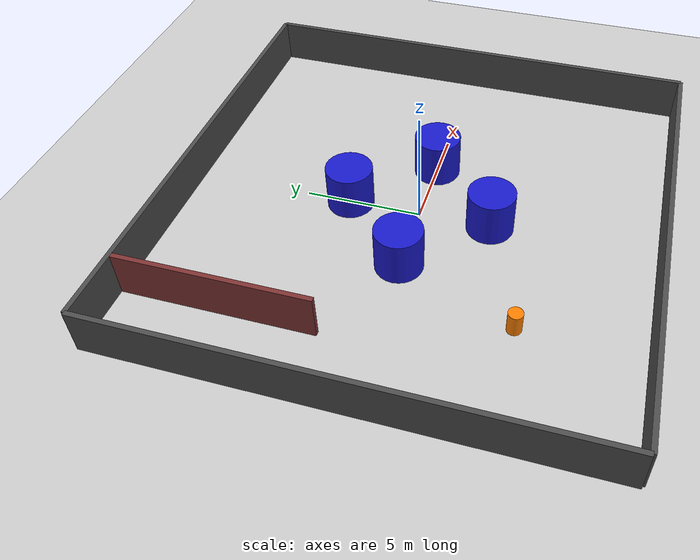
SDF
<sdf version="1.9">
 <world name="custom_room">
  <physics name="1ms" type="ignored">
   <max_step_size>0.001</max_step_size>
   <real_time_factor>1</real_time_factor>
   <real_time_update_rate>1000</real_time_update_rate>
  </physics>
  <plugin name="ignition::gazebo::systems::Physics" filename="libignition-gazebo-physics-system.so"/>
  <plugin name="ignition::gazebo::systems::UserCommands" filename="libignition-gazebo-user-commands-system.so"/>
  <plugin name="ignition::gazebo::systems::Sensors" filename="libignition-gazebo-sensors-system.so">
   <render_engine>ogre2</render_engine>
  </plugin>
  <plugin name="ignition::gazebo::systems::SceneBroadcaster" filename="libignition-gazebo-scene-broadcaster-system.so"/>
  <gravity>0 0 -9.8</gravity>
  <magnetic_field>6e-06 2.3e-05 -4.2e-05</magnetic_field>
  <atmosphere type="adiabatic"/>
  <scene><ambient>0.4 0.4 0.4 1</ambient><background>0.7 0.7 0.7 1</background><shadows>true</shadows></scene>
  <model name="ground_plane">
   <static>true</static>
   <link name="link">
    <collision name="collision">
     <geometry><plane><normal>0 0 1</normal><size>100 100</size></plane></geometry>
     <surface><friction><ode><mu>100</mu><mu2>50</mu2></ode></friction></surface>
    </collision>
    <visual name="visual">
     <geometry><plane><normal>0 0 1</normal><size>100 100</size></plane></geometry>
     <material>
      <ambient>0.8 0.8 0.8 1</ambient>
      <diffuse>0.8 0.8 0.8 1</diffuse>
      <specular>0.8 0.8 0.8 1</specular>
     </material>
    </visual>
    <inertial>
     <mass>1</mass>
     <inertia><ixx>1</ixx><ixy>0</ixy><ixz>0</ixz><iyy>1</iyy><iyz>0</iyz><izz>1</izz></inertia>
    </inertial>
   </link>
  </model>
  <model name="wall_north">
   <static>true</static>
   <pose>10 0 1 0 -0 0</pose>
   <link name="link">
    <collision name="collision"><geometry><box><size>0.2 20 2</size></box></geometry></collision>
    <visual name="visual">
     <geometry><box><size>0.2 20 2</size></box></geometry>
     <material><ambient>0.3 0.3 0.3 1</ambient></material>
    </visual>
    <inertial>
     <mass>1</mass>
     <inertia><ixx>1</ixx><ixy>0</ixy><ixz>0</ixz><iyy>1</iyy><iyz>0</iyz><izz>1</izz></inertia>
    </inertial>
   </link>
  </model>
  <model name="wall_south">
   <static>true</static>
   <pose>-10 0 1 0 -0 0</pose>
   <link name="link">
    <collision name="collision"><geometry><box><size>0.2 20 2</size></box></geometry></collision>
    <visual name="visual">
     <geometry><box><size>0.2 20 2</size></box></geometry>
     <material><ambient>0.3 0.3 0.3 1</ambient></material>
    </visual>
    <inertial>
     <mass>1</mass>
     <inertia><ixx>1</ixx><ixy>0</ixy><ixz>0</ixz><iyy>1</iyy><iyz>0</iyz><izz>1</izz></inertia>
    </inertial>
   </link>
  </model>
  <model name="wall_east">
   <static>true</static>
   <pose>0 10 1 0 -0 0</pose>
   <link name="link">
    <collision name="collision"><geometry><box><size>20 0.2 2</size></box></geometry></collision>
    <visual name="visual">
     <geometry><box><size>20 0.2 2</size></box></geometry>
     <material><ambient>0.3 0.3 0.3 1</ambient></material>
    </visual>
    <inertial>
     <mass>1</mass>
     <inertia><ixx>1</ixx><ixy>0</ixy><ixz>0</ixz><iyy>1</iyy><iyz>0</iyz><izz>1</izz></inertia>
    </inertial>
   </link>
  </model>
  <model name="wall_west">
   <static>true</static>
   <pose>0 -10 1 0 -0 0</pose>
   <link name="link">
    <collision name="collision"><geometry><box><size>20 0.2 2</size></box></geometry></collision>
    <visual name="visual">
     <geometry><box><size>20 0.2 2</size></box></geometry>
     <material><ambient>0.3 0.3 0.3 1</ambient></material>
    </visual>
    <inertial>
     <mass>1</mass>
     <inertia><ixx>1</ixx><ixy>0</ixy><ixz>0</ixz><iyy>1</iyy><iyz>0</iyz><izz>1</izz></inertia>
    </inertial>
   </link>
  </model>
  <model name="column_center">
   <static>true</static>
   <pose>2.95518 0 1 0 -0 0</pose>
   <link name="link">
    <collision name="collision">
     <geometry><cylinder><radius>1</radius><length>2</length></cylinder></geometry>
    </collision>
    <visual name="visual">
     <geometry><cylinder><radius>1</radius><length>2</length></cylinder></geometry>
     <material><ambient>0.1 0.1 0.8 1</ambient></material>
    </visual>
    <inertial>
     <mass>1</mass>
     <inertia><ixx>1</ixx><ixy>0</ixy><ixz>0</ixz><iyy>1</iyy><iyz>0</iyz><izz>1</izz></inertia>
    </inertial>
   </link>
  </model>
  <model name="wall_internal">
   <static>true</static>
   <pose>-7.13467 5.90741 1 0 -0 0</pose>
   <link name="link">
    <collision name="collision"><geometry><box><size>0.2 8 2</size></box></geometry></collision>
    <visual name="visual">
     <geometry><box><size>0.2 8 2</size></box></geometry>
     <material><ambient>0.5 0.2 0.2 1</ambient></material>
    </visual>
    <inertial>
     <mass>1</mass>
     <inertia><ixx>1</ixx><ixy>0</ixy><ixz>0</ixz><iyy>1</iyy><iyz>0</iyz><izz>1</izz></inertia>
    </inertial>
   </link>
  </model>
  <model name="target_iiwa_placeholder">
   <static>true</static>
   <pose>-5 -5 0.5 0 -0 0</pose>
   <link name="link">
    <collision name="collision">
     <geometry><cylinder><radius>0.29999999999999999</radius><length>1</length></cylinder></geometry>
    </collision>
    <visual name="visual">
     <geometry><cylinder><radius>0.29999999999999999</radius><length>1</length></cylinder></geometry>
     <material><ambient>1 0.5 0 1</ambient></material>
    </visual>
    <inertial>
     <mass>1</mass>
     <inertia><ixx>1</ixx><ixy>0</ixy><ixz>0</ixz><iyy>1</iyy><iyz>0</iyz><izz>1</izz></inertia>
    </inertial>
   </link>
  </model>
  <model name="column_center_1">
   <static>true</static>
   <pose>-3.02201 0.008029 1 0 -0 0</pose>
   <link name="link">
    <collision name="collision">
     <geometry><cylinder><radius>1</radius><length>2</length></cylinder></geometry>
    </collision>
    <visual name="visual">
     <geometry><cylinder><radius>1</radius><length>2</length></cylinder></geometry>
     <material><ambient>0.1 0.1 0.8 1</ambient></material>
    </visual>
   </link>
  </model>
  <model name="ground_plane_1">
   <static>true</static>
   <link name="link">
    <collision name="collision">
     <geometry><plane><normal>0 0 1</normal><size>100 100</size></plane></geometry>
     <surface><friction><ode><mu>100</mu><mu2>50</mu2></ode></friction></surface>
    </collision>
    <visual name="visual">
     <geometry><plane><normal>0 0 1</normal><size>100 100</size></plane></geometry>
     <material>
      <ambient>0.8 0.8 0.8 1</ambient>
      <diffuse>0.8 0.8 0.8 1</diffuse>
      <specular>0.8 0.8 0.8 1</specular>
     </material>
    </visual>
   </link>
   <pose>-4.15767 -0.257121 0 0 -0 0</pose>
  </model>
  <model name="column_center_1_1">
   <static>true</static>
   <pose>0.009985 -3.02755 1 0 -0 0</pose>
   <link name="link">
    <collision name="collision">
     <geometry><cylinder><radius>1</radius><length>2</length></cylinder></geometry>
    </collision>
    <visual name="visual">
     <geometry><cylinder><radius>1</radius><length>2</length></cylinder></geometry>
     <material><ambient>0.1 0.1 0.8 1</ambient></material>
    </visual>
   </link>
  </model>
  <model name="column_center_1_2">
   <static>true</static>
   <pose>-0.059278 3.04124 1 0 -0 0</pose>
   <link name="link">
    <collision name="collision">
     <geometry><cylinder><radius>1</radius><length>2</length></cylinder></geometry>
    </collision>
    <visual name="visual">
     <geometry><cylinder><radius>1</radius><length>2</length></cylinder></geometry>
     <material><ambient>0.1 0.1 0.8 1</ambient></material>
    </visual>
   </link>
  </model>
  <light name="sun" type="directional">
   <pose>0 0 10 0 -0 0</pose>
   <intensity>1</intensity>
   <direction>-0.5 0.1 -0.9</direction>
   <diffuse>0.8 0.8 0.8 1</diffuse>
   <specular>0.2 0.2 0.2 1</specular>
   <attenuation><range>10</range><linear>1</linear><constant>1</constant><quadratic>0</quadratic></attenuation>
   <spot><inner_angle>0</inner_angle><outer_angle>0</outer_angle><falloff>0</falloff></spot>
  </light>
 </world>
</sdf>
